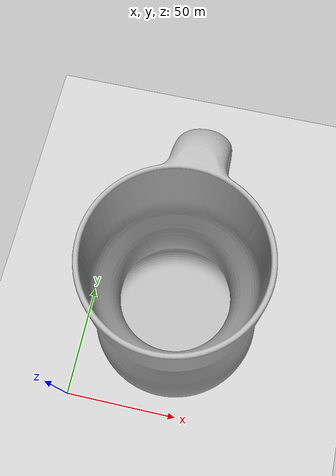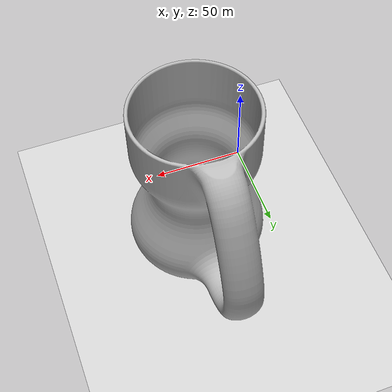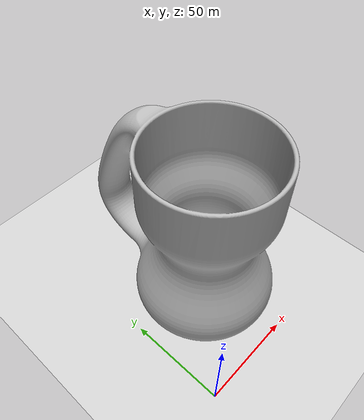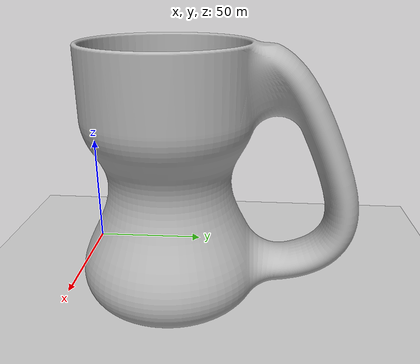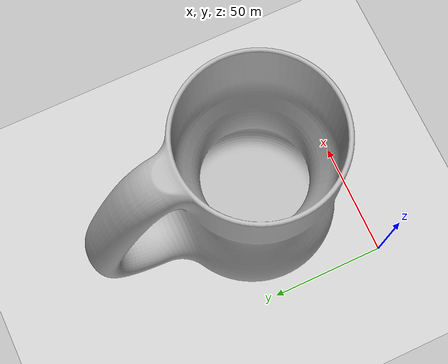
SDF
<?xml version="1.0"?>
<sdf version="1.4">
  <world name="default">
    <include>
      <uri>model://ground_plane</uri>
    </include>
    <include>
      <uri>model://sun</uri>
    </include>
    <model name="cup">
      <pose>0 0 0  0 0 0</pose>
      <static>true</static>
      <link name="body">
        <visual name="visual">
          <geometry>
            <mesh><uri>file:/home/swastik/catkin_ws/src/sitl_gazebo/models/errectcup/errectcup.dae</uri></mesh>
          </geometry>
        </visual>
      </link>
    </model>
  </world>
</sdf>
